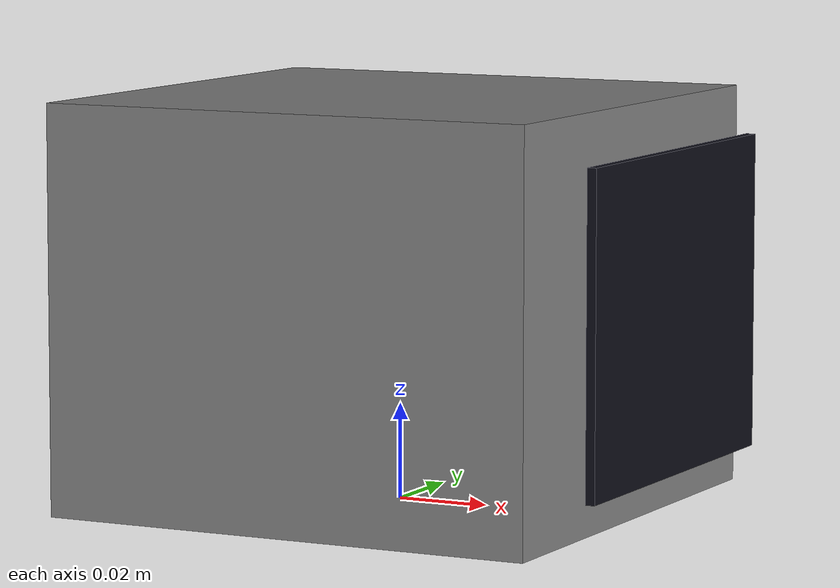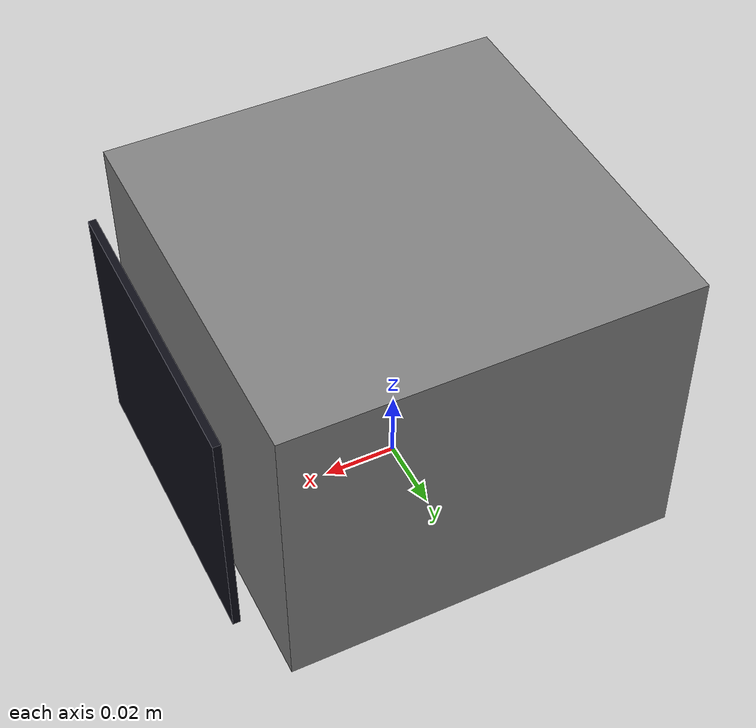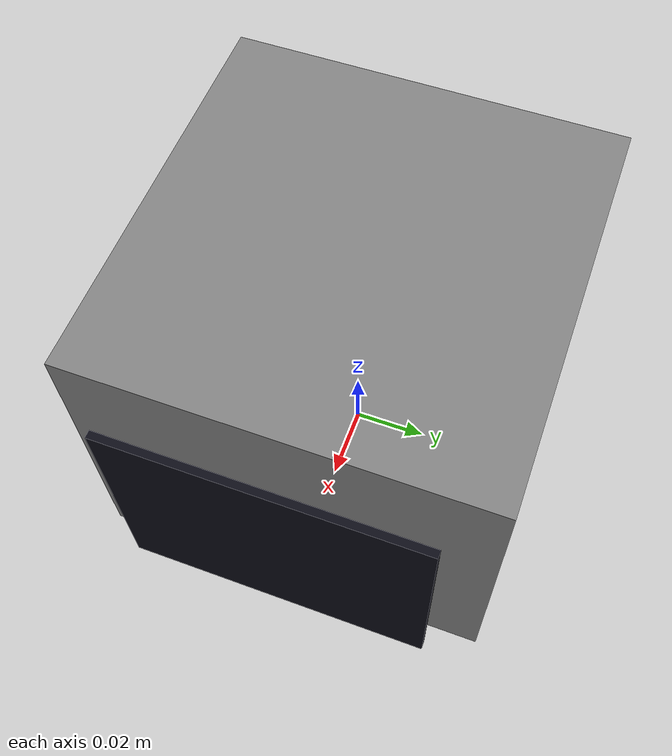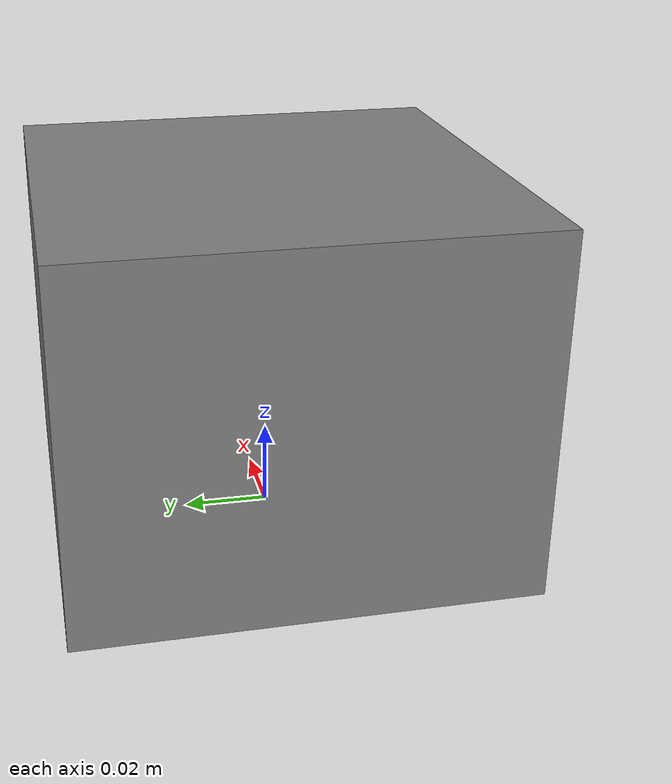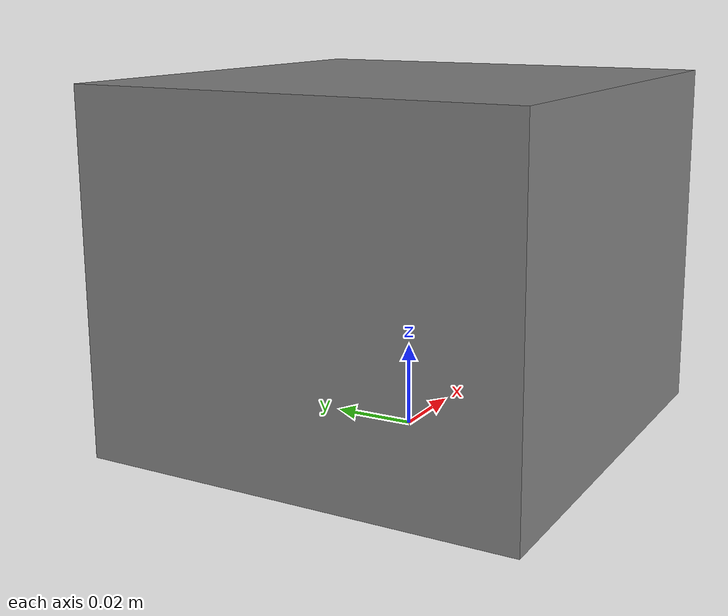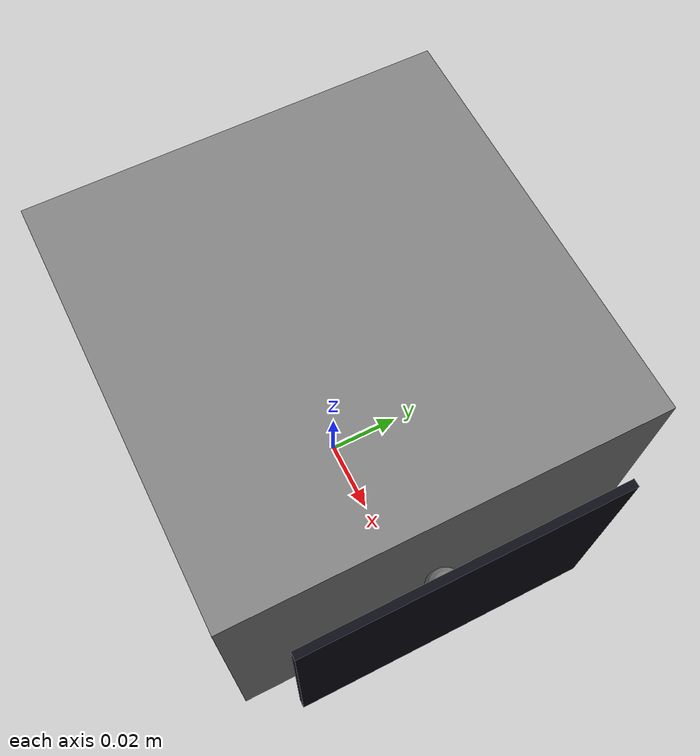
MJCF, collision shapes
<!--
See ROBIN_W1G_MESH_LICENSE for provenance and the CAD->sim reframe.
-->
<mujoco model="robin_w1g">
  <compiler angle="radian" meshdir="meshes" autolimits="true"/>

  <asset>
    <mesh name="robin_w1g_body_mesh" file="robin_w1g_body.obj"/>
    <material name="robin_w1g_body" rgba="0.10 0.10 0.12 1" specular="0.3" shininess="0.4"/>
    <material name="robin_w1g_window" rgba="0.05 0.05 0.09 1" specular="0.8" shininess="0.85"/>
  </asset>

  <worldbody>
    <body name="mount">
      <geom name="robin_w1g_body" type="mesh" mesh="robin_w1g_body_mesh" material="robin_w1g_body"
            contype="0" conaffinity="0"/>
      <!-- Dark glass window across the front (+x) face; the mesh carries no separate window material.
           A thin plate over the optical aperture. Cosmetic -- non-colliding. -->
      <geom name="robin_w1g_window" type="box" pos="0.062 0 0.043" size="0.001 0.040 0.033"
            material="robin_w1g_window" contype="0" conaffinity="0"/>
      <geom name="robin_w1g_collision" type="box" pos="0.0 0 0.0425" size="0.0535 0.0525 0.0425"
            group="3"/>
      <site name="robin_w1g" pos="0.058 0 0.043" size="0.005"/>
    </body>
  </worldbody>
</mujoco>
